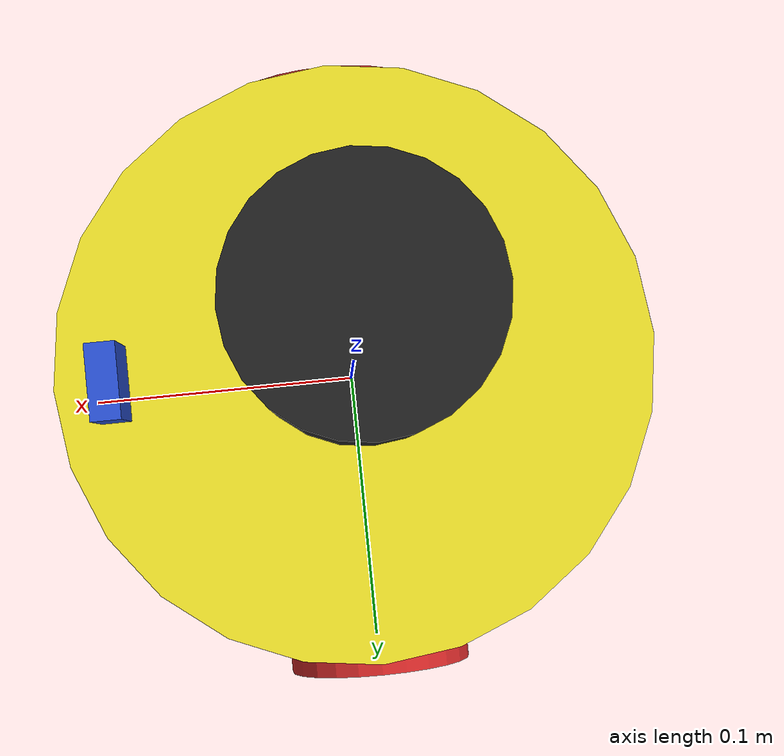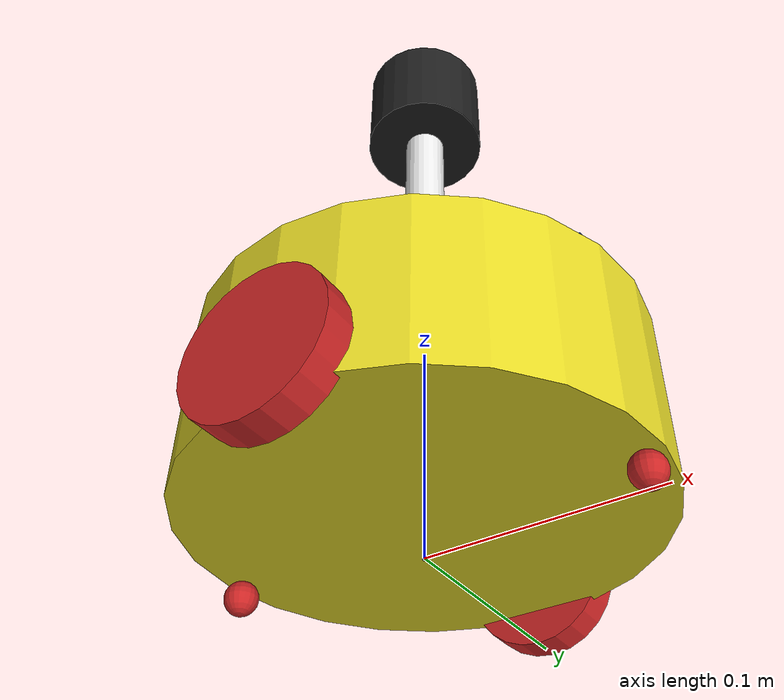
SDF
<sdf version='1.11'>
  <model name='my_car'>
    <link name='base_footprint'>
      <inertial>
        <pose>0 0 0 0 0 0</pose>
        <mass>0.01</mass>
        <inertia>
          <ixx>0</ixx>
          <ixy>0</ixy>
          <ixz>0</ixz>
          <iyy>0</iyy>
          <iyz>0</iyz>
          <izz>0</izz>
        </inertia>
      </inertial>
      <visual name='base_footprint_visual'>
        <pose>0 0 0 0 0 0</pose>
        <geometry>
          <sphere>
            <radius>0.001</radius>
          </sphere>
        </geometry>
      </visual>
    </link>
    <joint name='base_link2base_footprint' type='fixed'>
      <pose relative_to='base_footprint'>0 0 0.055 0 0 0</pose>
      <parent>base_footprint</parent>
      <child>base_link</child>
      <axis>
        <dynamics>
          <spring_reference>0</spring_reference>
          <spring_stiffness>0</spring_stiffness>
        </dynamics>
        <xyz>0 0 1</xyz>
        <limit>
          <lower>-inf</lower>
          <upper>inf</upper>
        </limit>
      </axis>
      <physics>
        <ode>
          <limit>
            <cfm>0</cfm>
            <erp>0.20000000000000001</erp>
          </limit>
        </ode>
      </physics>
    </joint>
    <link name='base_link'>
      <pose relative_to='base_link2base_footprint'>0 0 0 0 0 0</pose>
      <inertial>
        <pose>0 0 0 0 0 0</pose>
        <mass>0.5</mass>
        <inertia>
          <ixx>0.001516666666666667</ixx>
          <ixy>0</ixy>
          <ixz>0</ixz>
          <iyy>0.001516666666666667</iyy>
          <iyz>0</iyz>
          <izz>0.0025000000000000001</izz>
        </inertia>
      </inertial>
      <collision name='base_link_collision'>
        <pose>0 0 0 0 0 0</pose>
        <geometry>
          <cylinder>
            <length>0.080000000000000002</length>
            <radius>0.10000000000000001</radius>
          </cylinder>
        </geometry>
        <surface>
          <contact>
            <ode/>
          </contact>
          <friction>
            <ode/>
          </friction>
        </surface>
      </collision>
      <visual name='base_link_visual'>
        <pose>0 0 0 0 0 0</pose>
        <geometry>
          <cylinder>
            <length>0.080000000000000002</length>
            <radius>0.10000000000000001</radius>
          </cylinder>
        </geometry>
        <material>
          <script>
            <name>Gazebo/Yellow</name>
            <uri>file://media/materials/scripts/gazebo.material</uri>
          </script>
          <diffuse>0.625 0.37500003 0 0.5</diffuse>
          <ambient>0.625 0.37500003 0 0.5</ambient>
        </material>
      </visual>
    </link>
    <joint name='back_wheel2base_link' type='revolute'>
      <pose relative_to='base_link'>-0.092499999999999999 0 -0.047500000000000001 0 0 0</pose>
      <parent>base_link</parent>
      <child>back_wheel</child>
      <axis>
        <xyz>1 1 1</xyz>
        <limit>
          <lower>-inf</lower>
          <upper>inf</upper>
        </limit>
        <dynamics>
          <spring_reference>0</spring_reference>
          <spring_stiffness>0</spring_stiffness>
        </dynamics>
      </axis>
    </joint>
    <link name='back_wheel'>
      <pose relative_to='back_wheel2base_link'>0 0 0 0 0 0</pose>
      <inertial>
        <pose>0 0 0 0 0 0</pose>
        <mass>0.029999999999999999</mass>
        <inertia>
          <ixx>6.75e-07</ixx>
          <ixy>0</ixy>
          <ixz>0</ixz>
          <iyy>6.75e-07</iyy>
          <iyz>0</iyz>
          <izz>6.75e-07</izz>
        </inertia>
      </inertial>
      <collision name='back_wheel_collision'>
        <pose>0 0 0 0 0 0</pose>
        <geometry>
          <sphere>
            <radius>0.0074999999999999997</radius>
          </sphere>
        </geometry>
        <surface>
          <contact>
            <ode/>
          </contact>
          <friction>
            <ode/>
          </friction>
        </surface>
      </collision>
      <visual name='back_wheel_visual'>
        <pose>0 0 0 0 0 0</pose>
        <geometry>
          <sphere>
            <radius>0.0074999999999999997</radius>
          </sphere>
        </geometry>
        <material>
          <script>
            <name>Gazebo/Red</name>
            <uri>file://media/materials/scripts/gazebo.material</uri>
          </script>
          <diffuse>0 0 0 1</diffuse>
          <ambient>0 0 0 1</ambient>
        </material>
      </visual>
    </link>
    <joint name='camera2base_link' type='fixed'>
      <pose relative_to='base_link'>0.080000000000000002 0 0.052499999999999998 0 0 0</pose>
      <parent>base_link</parent>
      <child>camera</child>
      <axis>
        <dynamics>
          <spring_reference>0</spring_reference>
          <spring_stiffness>0</spring_stiffness>
        </dynamics>
        <xyz>0 0 1</xyz>
        <limit>
          <lower>-inf</lower>
          <upper>inf</upper>
        </limit>
      </axis>
      <physics>
        <ode>
          <limit>
            <cfm>0</cfm>
            <erp>0.20000000000000001</erp>
          </limit>
        </ode>
      </physics>
    </joint>
    <link name='camera'>
      <pose relative_to='camera2base_link'>0 0 0 0 0 0</pose>
      <inertial>
        <pose>0 0 0 0 0 0</pose>
        <mass>0.01</mass>
        <inertia>
          <ixx>6.0416666666666678e-07</ixx>
          <ixy>0</ixy>
          <ixz>0</ixz>
          <iyy>6.0416666666666678e-07</iyy>
          <iyz>0</iyz>
          <izz>1.0416666666666669e-06</izz>
        </inertia>
      </inertial>
      <collision name='camera_collision'>
        <pose>0 0 0 0 0 0</pose>
        <geometry>
          <box>
            <size>0.01 0.025000000000000001 0.025000000000000001</size>
          </box>
        </geometry>
        <surface>
          <contact>
            <ode/>
          </contact>
          <friction>
            <ode/>
          </friction>
        </surface>
      </collision>
      <visual name='camera_visual'>
        <pose>0 0 0 0 0 0</pose>
        <geometry>
          <box>
            <size>0.01 0.025000000000000001 0.025000000000000001</size>
          </box>
        </geometry>
        <material>
          <script>
            <name>Gazebo/Blue</name>
            <uri>file://media/materials/scripts/gazebo.material</uri>
          </script>
          <diffuse>0 0 0 1</diffuse>
          <ambient>0 0 0 1</ambient>
        </material>
      </visual>
    </link>
    <joint name='front_wheel2base_link' type='revolute'>
      <pose relative_to='base_link'>0.092499999999999999 0 -0.047500000000000001 0 0 0</pose>
      <parent>base_link</parent>
      <child>front_wheel</child>
      <axis>
        <xyz>1 1 1</xyz>
        <limit>
          <lower>-inf</lower>
          <upper>inf</upper>
        </limit>
        <dynamics>
          <spring_reference>0</spring_reference>
          <spring_stiffness>0</spring_stiffness>
        </dynamics>
      </axis>
    </joint>
    <link name='front_wheel'>
      <pose relative_to='front_wheel2base_link'>0 0 0 0 0 0</pose>
      <inertial>
        <pose>0 0 0 0 0 0</pose>
        <mass>0.029999999999999999</mass>
        <inertia>
          <ixx>6.75e-07</ixx>
          <ixy>0</ixy>
          <ixz>0</ixz>
          <iyy>6.75e-07</iyy>
          <iyz>0</iyz>
          <izz>6.75e-07</izz>
        </inertia>
      </inertial>
      <collision name='front_wheel_collision'>
        <pose>0 0 0 0 0 0</pose>
        <geometry>
          <sphere>
            <radius>0.0074999999999999997</radius>
          </sphere>
        </geometry>
        <surface>
          <contact>
            <ode/>
          </contact>
          <friction>
            <ode/>
          </friction>
        </surface>
      </collision>
      <visual name='front_wheel_visual'>
        <pose>0 0 0 0 0 0</pose>
        <geometry>
          <sphere>
            <radius>0.0074999999999999997</radius>
          </sphere>
        </geometry>
        <material>
          <script>
            <name>Gazebo/Red</name>
            <uri>file://media/materials/scripts/gazebo.material</uri>
          </script>
          <diffuse>0 0 0 1</diffuse>
          <ambient>0 0 0 1</ambient>
        </material>
      </visual>
    </link>
    <joint name='left_wheel2base_link' type='revolute'>
      <pose relative_to='base_link'>0 0.10000000000000001 -0.022499999999999999 0 0 0</pose>
      <parent>base_link</parent>
      <child>left_wheel</child>
      <axis>
        <xyz>0 1 0</xyz>
        <limit>
          <lower>-inf</lower>
          <upper>inf</upper>
        </limit>
        <dynamics>
          <spring_reference>0</spring_reference>
          <spring_stiffness>0</spring_stiffness>
        </dynamics>
      </axis>
    </joint>
    <link name='left_wheel'>
      <pose relative_to='left_wheel2base_link'>0 0 0 0 0 0</pose>
      <inertial>
        <pose>0 0 0 0 0 0</pose>
        <mass>0.050000000000000003</mass>
        <inertia>
          <ixx>1.4140625e-05</ixx>
          <ixy>0</ixy>
          <ixz>0</ixz>
          <iyy>1.4140625e-05</iyy>
          <iyz>0</iyz>
          <izz>2.6406250000000001e-05</izz>
        </inertia>
      </inertial>
      <collision name='left_wheel_collision'>
        <pose>0 0 0 1.5707963000000003 0 0</pose>
        <geometry>
          <cylinder>
            <length>0.014999999999999999</length>
            <radius>0.032500000000000001</radius>
          </cylinder>
        </geometry>
        <surface>
          <contact>
            <ode/>
          </contact>
          <friction>
            <ode/>
          </friction>
        </surface>
      </collision>
      <visual name='left_wheel_visual'>
        <pose>0 0 0 1.5707963000000003 0 0</pose>
        <geometry>
          <cylinder>
            <length>0.014999999999999999</length>
            <radius>0.032500000000000001</radius>
          </cylinder>
        </geometry>
        <material>
          <script>
            <name>Gazebo/Red</name>
            <uri>file://media/materials/scripts/gazebo.material</uri>
          </script>
          <diffuse>0 0 0 1</diffuse>
          <ambient>0 0 0 1</ambient>
        </material>
      </visual>
    </link>
    <joint name='right_wheel2base_link' type='revolute'>
      <pose relative_to='base_link'>0 -0.10000000000000001 -0.022499999999999999 0 0 0</pose>
      <parent>base_link</parent>
      <child>right_wheel</child>
      <axis>
        <xyz>0 1 0</xyz>
        <limit>
          <lower>-inf</lower>
          <upper>inf</upper>
        </limit>
        <dynamics>
          <spring_reference>0</spring_reference>
          <spring_stiffness>0</spring_stiffness>
        </dynamics>
      </axis>
    </joint>
    <link name='right_wheel'>
      <pose relative_to='right_wheel2base_link'>0 0 0 0 0 0</pose>
      <inertial>
        <pose>0 0 0 0 0 0</pose>
        <mass>0.050000000000000003</mass>
        <inertia>
          <ixx>1.4140625e-05</ixx>
          <ixy>0</ixy>
          <ixz>0</ixz>
          <iyy>1.4140625e-05</iyy>
          <iyz>0</iyz>
          <izz>2.6406250000000001e-05</izz>
        </inertia>
      </inertial>
      <collision name='right_wheel_collision'>
        <pose>0 0 0 1.5707963000000003 0 0</pose>
        <geometry>
          <cylinder>
            <length>0.014999999999999999</length>
            <radius>0.032500000000000001</radius>
          </cylinder>
        </geometry>
        <surface>
          <contact>
            <ode/>
          </contact>
          <friction>
            <ode/>
          </friction>
        </surface>
      </collision>
      <visual name='right_wheel_visual'>
        <pose>0 0 0 1.5707963000000003 0 0</pose>
        <geometry>
          <cylinder>
            <length>0.014999999999999999</length>
            <radius>0.032500000000000001</radius>
          </cylinder>
        </geometry>
        <material>
          <script>
            <name>Gazebo/Red</name>
            <uri>file://media/materials/scripts/gazebo.material</uri>
          </script>
          <diffuse>0 0 0 1</diffuse>
          <ambient>0 0 0 1</ambient>
        </material>
      </visual>
    </link>
    <joint name='support2base_link' type='fixed'>
      <pose relative_to='base_link'>0 0 0.115 0 0 0</pose>
      <parent>base_link</parent>
      <child>support</child>
      <axis>
        <dynamics>
          <spring_reference>0</spring_reference>
          <spring_stiffness>0</spring_stiffness>
        </dynamics>
        <xyz>0 0 1</xyz>
        <limit>
          <lower>-inf</lower>
          <upper>inf</upper>
        </limit>
      </axis>
      <physics>
        <ode>
          <limit>
            <cfm>0</cfm>
            <erp>0.20000000000000001</erp>
          </limit>
        </ode>
      </physics>
    </joint>
    <link name='support'>
      <pose relative_to='support2base_link'>0 0 0 0 0 0</pose>
      <inertial>
        <pose>0 0 0 0 0 0</pose>
        <mass>0.02</mass>
        <inertia>
          <ixx>3.8000000000000002e-05</ixx>
          <ixy>0</ixy>
          <ixz>0</ixz>
          <iyy>3.8000000000000002e-05</iyy>
          <iyz>0</iyz>
          <izz>9.9999999999999995e-07</izz>
        </inertia>
      </inertial>
      <collision name='support_collision'>
        <pose>0 0 0 0 0 0</pose>
        <geometry>
          <cylinder>
            <length>0.14999999999999999</length>
            <radius>0.01</radius>
          </cylinder>
        </geometry>
        <surface>
          <contact>
            <ode/>
          </contact>
          <friction>
            <ode/>
          </friction>
        </surface>
      </collision>
      <visual name='support_visual'>
        <pose>0 0 0 0 0 0</pose>
        <geometry>
          <cylinder>
            <length>0.14999999999999999</length>
            <radius>0.01</radius>
          </cylinder>
        </geometry>
        <material>
          <script>
            <name>Gazebo/White</name>
            <uri>file://media/materials/scripts/gazebo.material</uri>
          </script>
          <diffuse>1 0.25 0 0.800000012</diffuse>
          <ambient>1 0.25 0 0.800000012</ambient>
        </material>
      </visual>
    </link>
    <joint name='laser2support' type='fixed'>
      <pose relative_to='support'>0 0 0.10000000000000001 0 0 0</pose>
      <parent>support</parent>
      <child>laser</child>
      <axis>
        <dynamics>
          <spring_reference>0</spring_reference>
          <spring_stiffness>0</spring_stiffness>
        </dynamics>
        <xyz>0 0 1</xyz>
        <limit>
          <lower>-inf</lower>
          <upper>inf</upper>
        </limit>
      </axis>
      <physics>
        <ode>
          <limit>
            <cfm>0</cfm>
            <erp>0.20000000000000001</erp>
          </limit>
        </ode>
      </physics>
    </joint>
    <link name='laser'>
      <pose relative_to='laser2support'>0 0 0 0 0 0</pose>
      <inertial>
        <pose>0 0 0 0 0 0</pose>
        <mass>0.10000000000000001</mass>
        <inertia>
          <ixx>4.3333333333333327e-05</ixx>
          <ixy>0</ixy>
          <ixz>0</ixz>
          <iyy>4.3333333333333327e-05</iyy>
          <iyz>0</iyz>
          <izz>4.5000000000000003e-05</izz>
        </inertia>
      </inertial>
      <collision name='laser_collision'>
        <pose>0 0 0 0 0 0</pose>
        <geometry>
          <cylinder>
            <length>0.050000000000000003</length>
            <radius>0.029999999999999999</radius>
          </cylinder>
        </geometry>
        <surface>
          <contact>
            <ode/>
          </contact>
          <friction>
            <ode/>
          </friction>
        </surface>
      </collision>
      <visual name='laser_visual'>
        <pose>0 0 0 0 0 0</pose>
        <geometry>
          <cylinder>
            <length>0.050000000000000003</length>
            <radius>0.029999999999999999</radius>
          </cylinder>
        </geometry>
        <material>
          <script>
            <name>Gazebo/Black</name>
            <uri>file://media/materials/scripts/gazebo.material</uri>
          </script>
          <diffuse>0 0 0 1</diffuse>
          <ambient>0 0 0 1</ambient>
        </material>
      </visual>
      <sensor name='rplidar' type='ray'>
        <pose>0 0 0 0 0 0</pose>
        <topic>lidar</topic>
        <update_rate>5.5</update_rate>
        <visualize>true</visualize>
        <ray>
          <scan>
            <horizontal>
              <samples>360</samples>
              <resolution>1</resolution>
              <min_angle>-3</min_angle>
              <max_angle>3</max_angle>
            </horizontal>
          </scan>
          <range>
            <min>0.10000000000000001</min>
            <max>30</max>
            <resolution>0.01</resolution>
          </range>
          <noise>
            <type>gaussian</type>
            <mean>0</mean>
            <stddev>0.01</stddev>
          </noise>
        </ray>
      </sensor>
    </link>
    <plugin name='gz::sim::systems::DiffDrive' filename='gz-sim-diff-drive-system'>
      <left_joint>left_wheel2base_link</left_joint>
      <right_joint>right_wheel2base_link</right_joint>
      <wheel_separation>0.2</wheel_separation>
      <wheel_radius>0.065</wheel_radius>
      <odom_publish_frequency>1</odom_publish_frequency>
      <max_torque>30</max_torque>
      <max_acceleration>1.8</max_acceleration>
    </plugin>
  </model>
</sdf>
